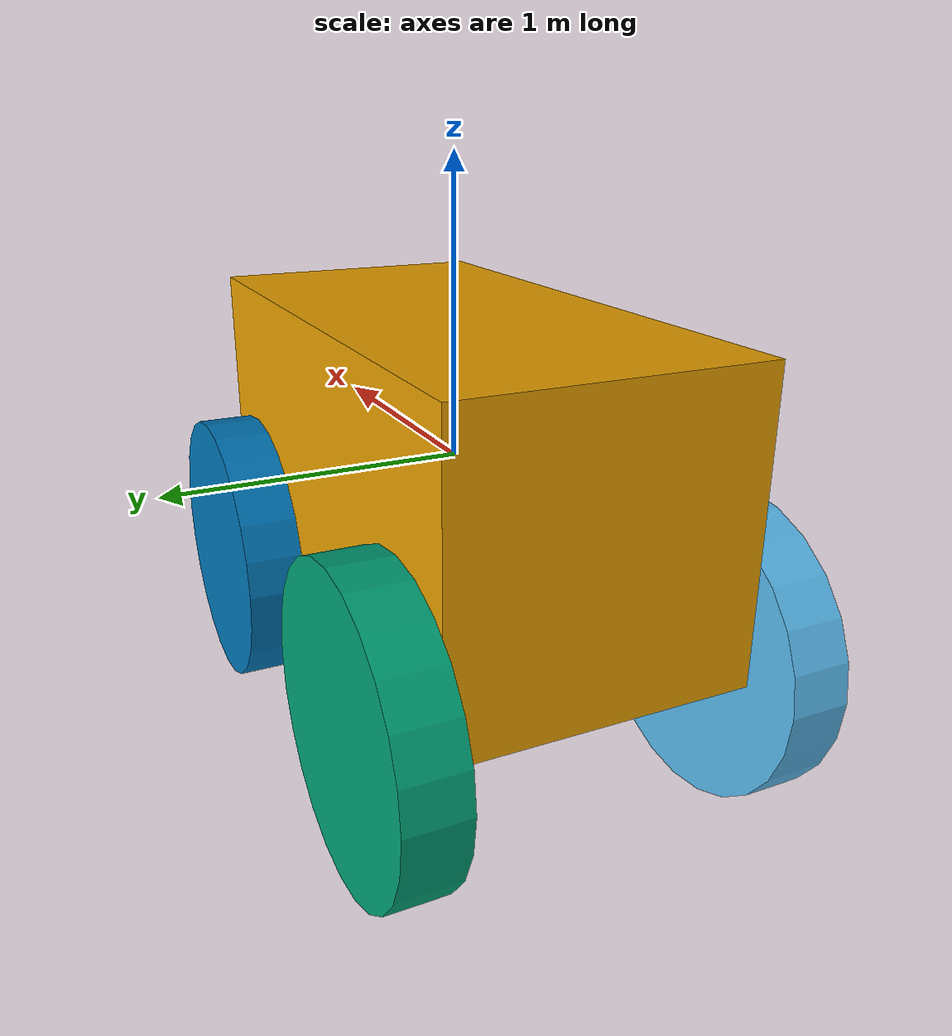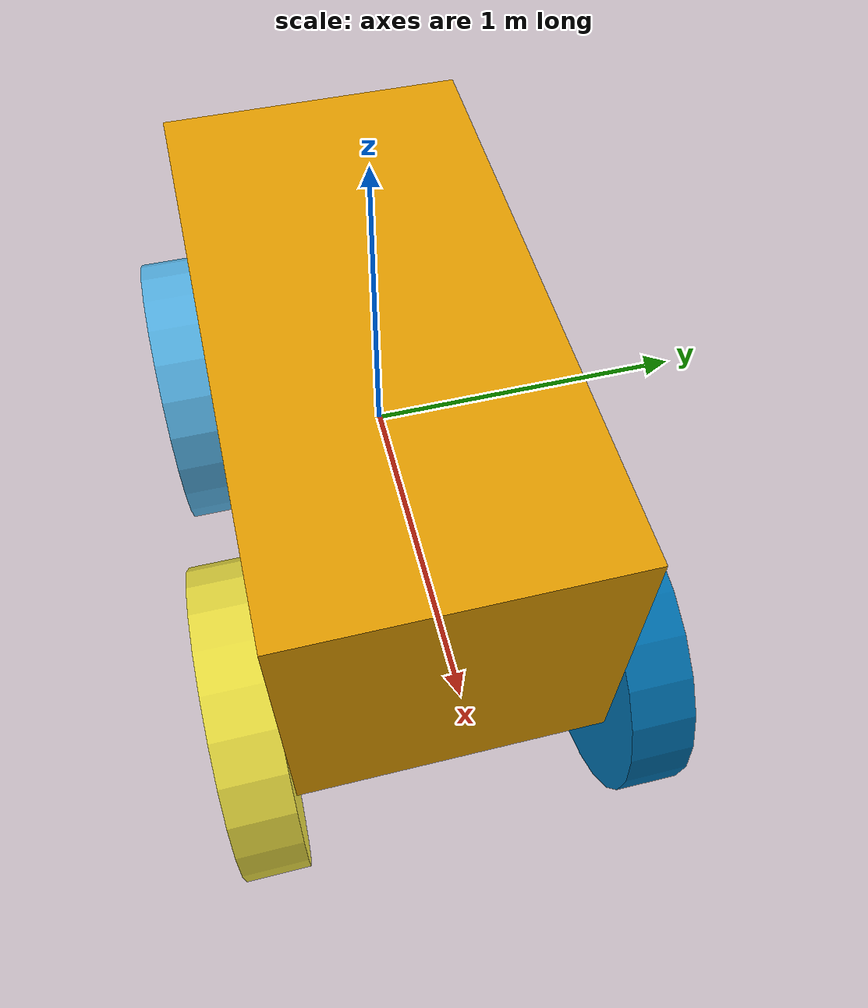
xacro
<?xml version="1.0"?>
<robot xmlns:xacro="http://www.ros.org/wiki/xacro" name="t1">

<xacro:macro name="box_inertia" params="m x y z">
    <inertial>
            <mass value="${m}" />
            <inertia ixx="${1/12*m*z*z +1/12*m*x*x}" ixy="0.0" ixz="0.0"
		iyy="${1/12*m*z*z +1/12*m*y*y}" iyz="0.0"
		izz="${1/12*m*x*x +1/12*m*y*y}" />
    </inertial>
</xacro:macro>

<xacro:macro name="cyl_inertia" params="m rad l">
    <inertial>
            <mass value="${m}" />
            <inertia ixx="${1/12*3*rad*rad +1/12*l*l}" ixy="0.0" ixz="0.0"
		iyy="${1/12*3*rad*rad +1/12*l*l}" iyz="0.0"
		izz="${0.5*m*rad}" />
    </inertial>
</xacro:macro>

<xacro:macro name="wheel" params="prefix front left rad leng m">
	<link name="${prefix}_wheel">
		<visual>
			<geometry>
				<cylinder length="${leng}" radius="${rad}"/>
			</geometry>
			<origin rpy="1.5708 0 0" xyz="0 0 0"/>
		</visual>
		<collision>
			<geometry>
				<cylinder length="${leng}" radius="${rad}"/>
			</geometry>
			<origin rpy="1.5708 0 0" xyz="0 0 0"/>
		</collision>
		<xacro:cyl_inertia m="${m}" rad="${rad}" l="${leng}"/>
	</link>
	<joint name="${prefix}_wheel_joint" type="continuous">
		<parent link="base_link"/>
		<child link="${prefix}_wheel"/>
		<axis xyz="0 1 0"/>
		<origin xyz="${front*0.7} ${-1*left*leng/2 + -1*left*0.5} ${-1+rad}"/>
	</joint>
</xacro:macro>

	<link name="base_link">
		<visual>
			<geometry>
				<box size="2 1 1"/>
			</geometry>
		</visual>
		<collision>
			<geometry>
				<box size="2 1 1"/>
			</geometry>
		</collision>
		<xacro:box_inertia m="10" x="2" y="1" z="1"/>
	</link>

	<xacro:wheel prefix="lb" front="-1" left="1" rad="0.5" leng="0.2" m="5"/>
	<xacro:wheel prefix="rb" front="-1" left="-1" rad="0.5" leng="0.2" m="5"/>
	<xacro:wheel prefix="lf" front="1" left="1" rad="0.5" leng="0.2" m="5"/>
	<xacro:wheel prefix="rf" front="1" left="-1" rad="0.5" leng="0.2" m="5"/>

</robot>
